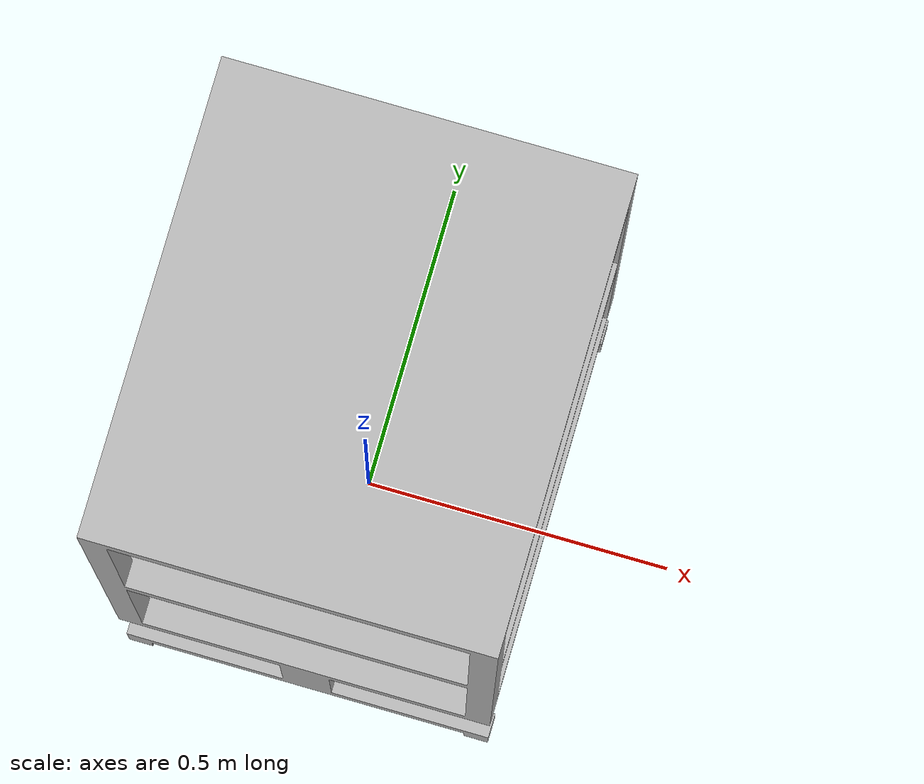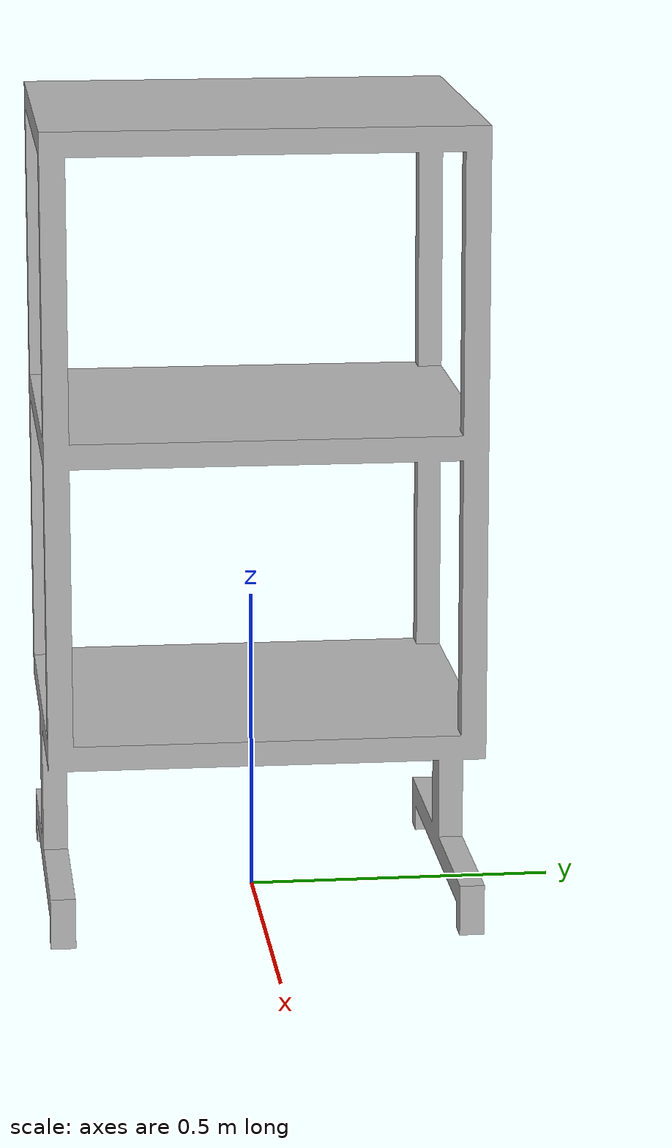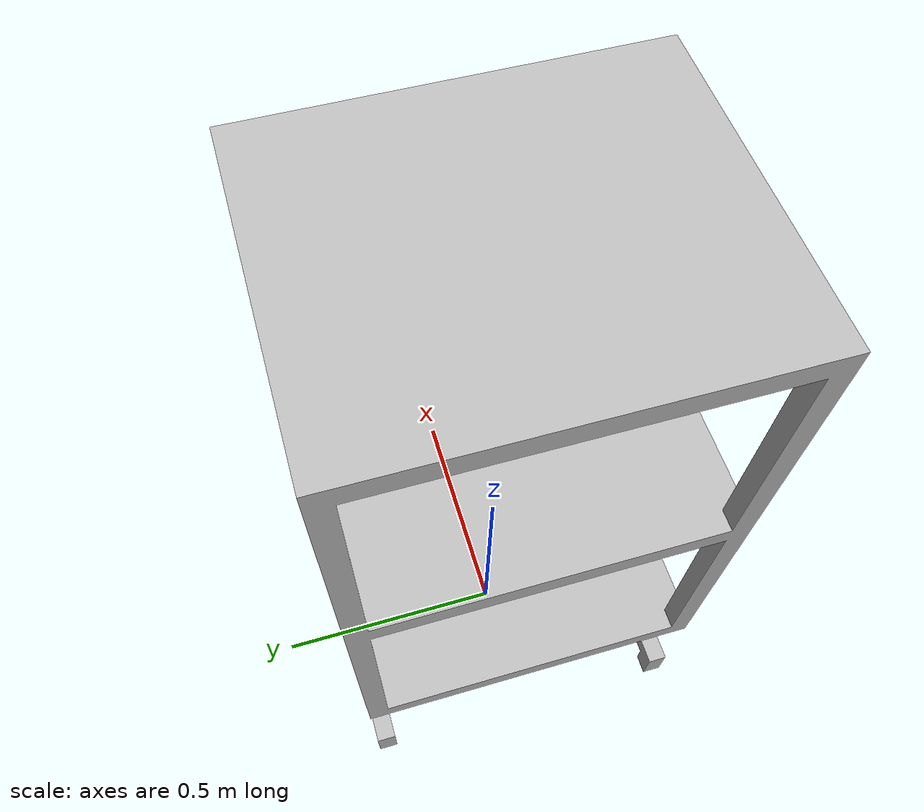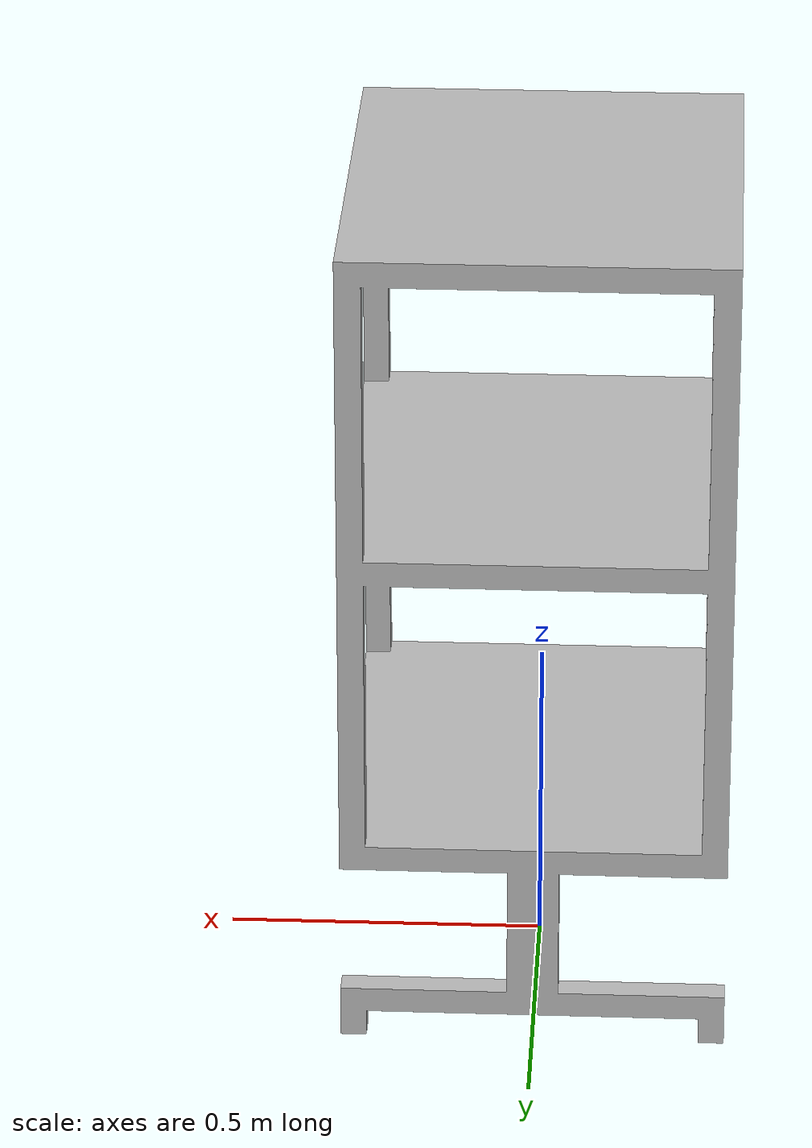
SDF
<?xml version="1.0" ?>
<sdf version="1.4">
  <model name="rb1_cart">
    <static>true</static>
    <pose>0 0 0 0 0 0</pose>
    <link name="walls">
      <collision name="collision">
        <geometry>
          <mesh>
            <uri>model://rb1_cart/meshes/rb1_cart.dae</uri>
          </mesh>
        </geometry>
      </collision>
      <visual name="visual">
        <geometry>
          <mesh>
            <uri>model://rb1_cart/meshes/rb1_cart.dae</uri>
          </mesh>
        </geometry>
        <cast_shadows>false</cast_shadows>
      </visual>
    </link>
  </model>
</sdf>
